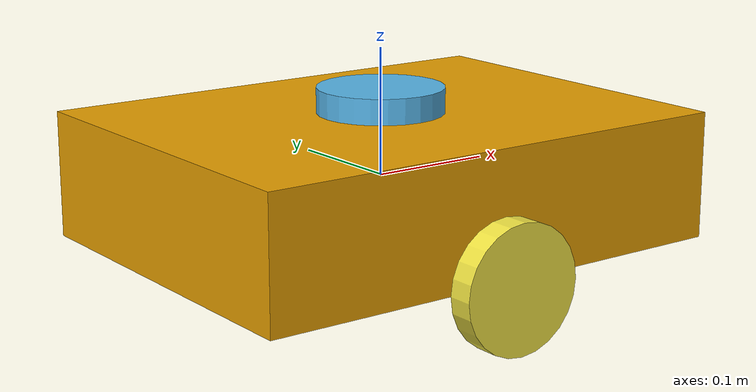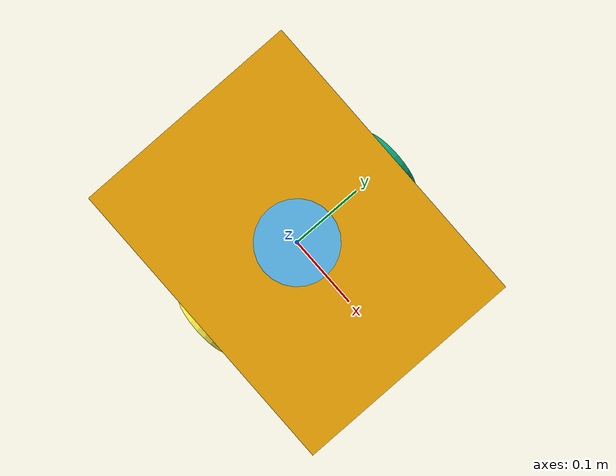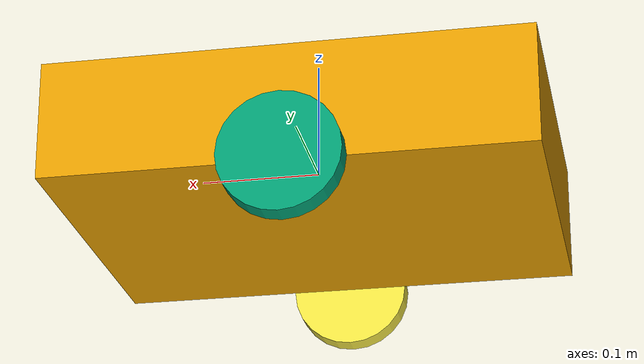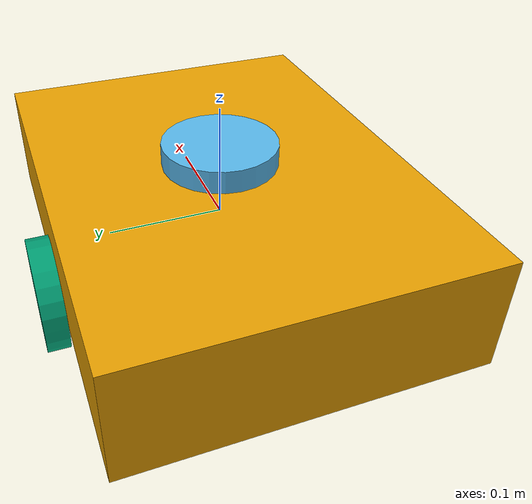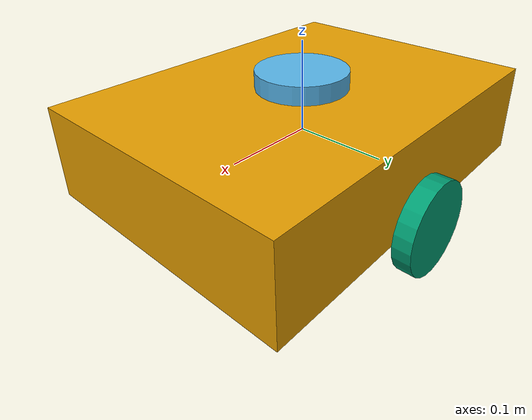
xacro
<?xml version="1.0"?>
<robot name="robot" xmlns:xacro="http://www.ros.org/wiki/xacro">

    <!--参数-->
    <xacro:property name="base_length" value="0.4"/>
    <xacro:property name="base_width" value="0.3"/>
    <xacro:property name="base_height" value="0.1"/>
    <xacro:property name="base_mass" value="2.0"/>
    <xacro:property name="lidar_radius" value="0.05"/>
    <xacro:property name="lidar_width" value="0.02"/>
    <xacro:property name="lidar_mass" value="0.01"/>
    <xacro:property name="leftwheel_radius" value="0.05"/>
    <xacro:property name="leftwheel_width" value="0.02"/>
    <xacro:property name="rightwheel_radius" value="0.05"/>
    <xacro:property name="rightwheel_width" value="0.02"/>
    <xacro:property name="wheel_mass" value="0.02"/>

    <xacro:macro name="wheel" params="name y z radius width mass">
        <link name="${name}_link">
            <visual>
                <origin xyz="0 0 0" rpy="1.5708 0 0"/>
                <geometry>
                    <cylinder radius="${radius}" length="${width}"/>
                </geometry>
            </visual>

            <collision>

                <origin xyz="0 0 0" rpy="1.5708 0 0"/>

                <geometry>
                    <cylinder radius="${radius}" length="${width}"/>
                </geometry>

            </collision>

            <inertial>
                <origin xyz="0 0 0" rpy="0 0 0"/>
                <mass value="${mass}"/>
                <inertia ixx="${mass * (3*radius*radius + width*width) / 12.0}"
                        ixy="0"
                        ixz="0"
                        iyy="${mass * radius*radius / 2.0}"
                        iyz="0"
                        izz="${mass * (3*radius*radius + width*width) / 12.0}"/>
            </inertial>
        </link>

        <joint name="${name}_joint" type="continuous">
            <parent link="base_link"/>
            <child link="${name}_link"/>
            <axis xyz="0 1 0"/>
            <origin xyz="0 ${y} ${z}" rpy="0 0 0"/>
        </joint>
    </xacro:macro>

    <link name="base_link">
        <visual>
            <geometry>
                <box size="${base_length}
                            ${base_width}
                            ${base_height}"/>
            </geometry>
        </visual>

        <collision>
            <geometry>
                <box size="${base_length} ${base_width} ${base_height}"/>
            </geometry>
        </collision>

        <inertial>
            <origin xyz="0 0 0" rpy="0 0 0"/>
            <mass value="${base_mass}"/>
            <inertia ixx="${base_mass * (base_width*base_width + base_height*base_height) / 12.0}"
                    ixy="0"
                    ixz="0"
                    iyy="${base_mass * (base_length*base_length + base_height*base_height) / 12.0}"
                    iyz="0"
                    izz="${base_mass * (base_width*base_width + base_length*base_length) / 12.0}"/>
        </inertial>
    </link>

    <link name="lidar_link">
        <visual>
            <geometry>
                <cylinder radius="${lidar_radius}" length="${lidar_width}"/>
            </geometry>
        </visual>

        <collision>
            <geometry>
                <cylinder radius="${lidar_radius}" length="${lidar_width}"/>
            </geometry>
        </collision>

        <inertial>
            <origin xyz="0 0 0" rpy="0 0 0"/>
            <mass value="${lidar_mass}"/>
            <inertia ixx="${lidar_mass * (3 * lidar_radius*lidar_radius + lidar_width*lidar_width) / 12.0}"
                    ixy="0"
                    ixz="0"
                    iyy="${lidar_mass * (3 * lidar_radius*lidar_radius + lidar_width*lidar_width) / 12.0}"
                    iyz="0"
                    izz="${lidar_mass * lidar_radius*lidar_radius / 2.0}"/>
        </inertial>
    </link>

    <joint name="lidar_joint" type="fixed">
        <parent link="base_link"/>
        <child link="lidar_link"/>
        <origin xyz="0 0 ${base_height/2 + lidar_width/2}" rpy="0 0 0"/>
    </joint>

    <xacro:wheel name="leftwheel"
                y="${base_width/2 + leftwheel_width/2}"
                z="${-base_height/2}"
                radius="${leftwheel_radius}"
                width="${leftwheel_width}"
                mass="${wheel_mass}"/>
    <xacro:wheel name="rightwheel"
                y="${-(base_width/2 + rightwheel_width/2)}"
                z="${-base_height/2}"
                radius="${rightwheel_radius}"
                width="${rightwheel_width}"
                mass="${wheel_mass}"/>

</robot>
